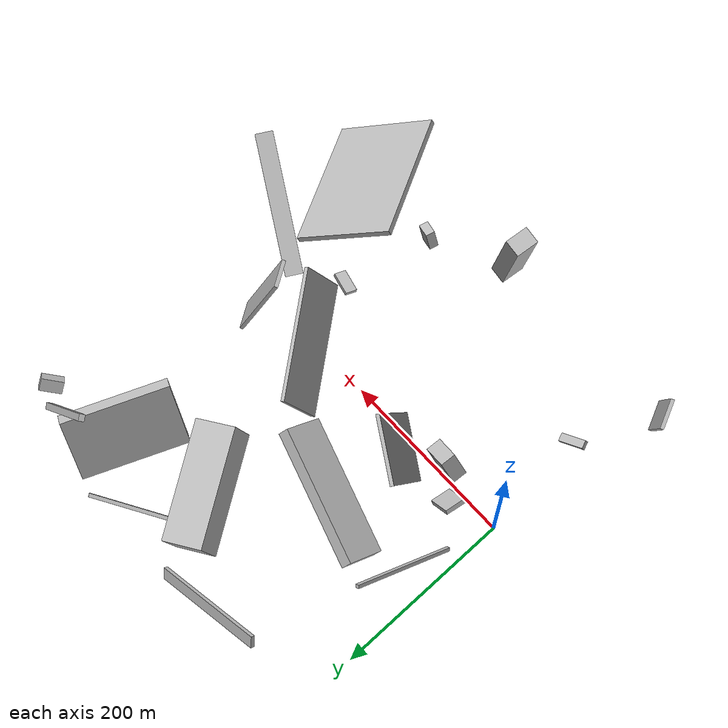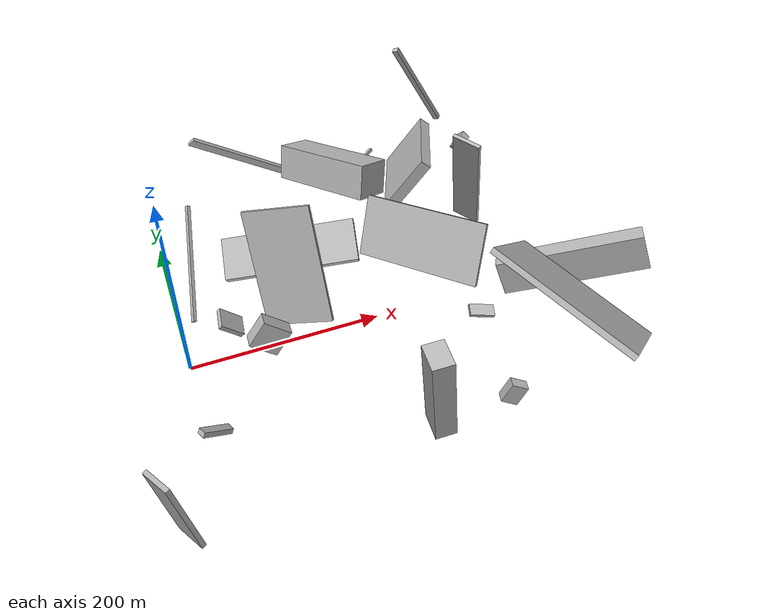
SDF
<sdf version="1.6">
 <world name="default">
  <scene>
   <sky><clouds><speed>12</speed></clouds></sky>
   <ambient>0.4 0.4 0.4 1</ambient>
   <background>0.7 0.7 0.7 1</background>
   <shadows>1</shadows>
  </scene>
  <gravity>0 0 -9.8066</gravity>
  <magnetic_field>6e-06 2.3e-05 -4.2e-05</magnetic_field>
  <physics default="0" name="default_physics" type="ode">
   <ode>
    <solver>
     <type>quick</type>
     <iters>10</iters>
     <sor>1.0</sor>
     <use_dynamic_moi_rescaling>0</use_dynamic_moi_rescaling>
    </solver>
    <constraints>
     <cfm>0</cfm>
     <erp>0.2</erp>
     <contact_max_correcting_vel>100</contact_max_correcting_vel>
     <contact_surface_layer>0.001</contact_surface_layer>
    </constraints>
   </ode>
   <max_step_size>0.004</max_step_size>
   <real_time_factor>1</real_time_factor>
   <real_time_update_rate>250</real_time_update_rate>
  </physics>
  <light name="sun" type="directional">
   <pose>0 0 10 0 0 0</pose>
   <diffuse>0.8 0.8 0.8 1</diffuse>
   <specular>0.2 0.2 0.2 1</specular>
   <attenuation>
    <range>1000</range>
    <constant>0.9</constant>
    <linear>0.01</linear>
    <quadratic>0.001</quadratic>
   </attenuation>
   <direction>-0.5 0.1 -0.9</direction>
  </light>
  <model name="building_1">
   <static>0</static>
   <pose>115.51957446293102 30.012629641058027 74.03645450761006 1.2761878235305428 -0.23148446944851434 -0.540725278665989</pose>
   <link name="link">
    <gravity>0</gravity>
    <pose>0 0 2.0 0 0 0</pose>
    <collision name="collision"><geometry><box><size>72 125 4</size></box></geometry></collision>
    <visual name="visual">
     <cast_shadows>0</cast_shadows>
     <geometry><box><size>72 125 4</size></box></geometry>
     <material>
      <script>
       <uri>model://HANNAS_wall/materials/scripts</uri>
       <uri>model://HANNAS_wall/materials/textures</uri>
       <name>vrc/HANNAS_wall</name>
      </script>
     </material>
    </visual>
   </link>
  </model>
  <model name="building_2">
   <static>0</static>
   <pose>387.1133379926369 256.8941587744013 70.54724467278805 -0.4402182527002584 0.30385240229504545 2.2242574939452053</pose>
   <link name="link">
    <gravity>0</gravity>
    <pose>0 0 63.5 0 0 0</pose>
    <collision name="collision"><geometry><box><size>7 6 127</size></box></geometry></collision>
    <visual name="visual">
     <cast_shadows>0</cast_shadows>
     <geometry><box><size>7 6 127</size></box></geometry>
     <material>
      <script>
       <uri>model://HANNAS_wall/materials/scripts</uri>
       <uri>model://HANNAS_wall/materials/textures</uri>
       <name>vrc/HANNAS_wall</name>
      </script>
     </material>
    </visual>
   </link>
  </model>
  <model name="building_3">
   <static>0</static>
   <pose>7.97189784267802 -118.61508589054509 38.027704734403855 1.8179590719950942 1.0104037315476861 -2.537257264718103</pose>
   <link name="link">
    <gravity>0</gravity>
    <pose>0 0 4.5 0 0 0</pose>
    <collision name="collision"><geometry><box><size>5 30 9</size></box></geometry></collision>
    <visual name="visual">
     <cast_shadows>0</cast_shadows>
     <geometry><box><size>5 30 9</size></box></geometry>
     <material>
      <script>
       <uri>model://HANNAS_wall/materials/scripts</uri>
       <uri>model://HANNAS_wall/materials/textures</uri>
       <name>vrc/HANNAS_wall</name>
      </script>
     </material>
    </visual>
   </link>
  </model>
  <model name="building_4">
   <static>0</static>
   <pose>267.36261876799415 -161.8885948501137 15.349895497531739 0.42323840495578896 0.03267897175602702 1.2963970974669163</pose>
   <link name="link">
    <gravity>0</gravity>
    <pose>0 0 11.0 0 0 0</pose>
    <collision name="collision"><geometry><box><size>10 17 22</size></box></geometry></collision>
    <visual name="visual">
     <cast_shadows>0</cast_shadows>
     <geometry><box><size>10 17 22</size></box></geometry>
     <material>
      <script>
       <uri>model://HANNAS_wall/materials/scripts</uri>
       <uri>model://HANNAS_wall/materials/textures</uri>
       <name>vrc/HANNAS_wall</name>
      </script>
     </material>
    </visual>
   </link>
  </model>
  <model name="building_5">
   <static>0</static>
   <pose>320.7974539367321 215.55659948649117 41.973523899523805 3.0539309524308496 -0.9636475291592219 -0.33959763902251516</pose>
   <link name="link">
    <gravity>0</gravity>
    <pose>0 0 7.0 0 0 0</pose>
    <collision name="collision"><geometry><box><size>78 117 14</size></box></geometry></collision>
    <visual name="visual">
     <cast_shadows>0</cast_shadows>
     <geometry><box><size>78 117 14</size></box></geometry>
     <material>
      <script>
       <uri>model://HANNAS_wall/materials/scripts</uri>
       <uri>model://HANNAS_wall/materials/textures</uri>
       <name>vrc/HANNAS_wall</name>
      </script>
     </material>
    </visual>
   </link>
  </model>
  <model name="building_6">
   <static>0</static>
   <pose>133.43179916695507 99.15676495498857 38.60626177656346 2.9647161248522873 -0.6748696581475191 1.3831967018278477</pose>
   <link name="link">
    <gravity>0</gravity>
    <pose>0 0 7.0 0 0 0</pose>
    <collision name="collision"><geometry><box><size>47 150 14</size></box></geometry></collision>
    <visual name="visual">
     <cast_shadows>0</cast_shadows>
     <geometry><box><size>47 150 14</size></box></geometry>
     <material>
      <script>
       <uri>model://HANNAS_wall/materials/scripts</uri>
       <uri>model://HANNAS_wall/materials/textures</uri>
       <name>vrc/HANNAS_wall</name>
      </script>
     </material>
    </visual>
   </link>
  </model>
  <model name="building_7">
   <static>0</static>
   <pose>258.74262911620576 19.909534169662365 74.21606483198269 1.1156829728362714 -0.09790075360918171 -0.9148234216251553</pose>
   <link name="link">
    <gravity>0</gravity>
    <pose>0 0 2.0 0 0 0</pose>
    <collision name="collision"><geometry><box><size>140 66 4</size></box></geometry></collision>
    <visual name="visual">
     <cast_shadows>0</cast_shadows>
     <geometry><box><size>140 66 4</size></box></geometry>
     <material>
      <script>
       <uri>model://HANNAS_wall/materials/scripts</uri>
       <uri>model://HANNAS_wall/materials/textures</uri>
       <name>vrc/HANNAS_wall</name>
      </script>
     </material>
    </visual>
   </link>
  </model>
  <model name="building_8">
   <static>0</static>
   <pose>81.44403660194112 0.31102568377460305 24.363558946305385 1.3852978594767997 -0.929839647574269 0.06048040096530649</pose>
   <link name="link">
    <gravity>0</gravity>
    <pose>0 0 8.5 0 0 0</pose>
    <collision name="collision"><geometry><box><size>30 32 17</size></box></geometry></collision>
    <visual name="visual">
     <cast_shadows>0</cast_shadows>
     <geometry><box><size>30 32 17</size></box></geometry>
     <material>
      <script>
       <uri>model://HANNAS_wall/materials/scripts</uri>
       <uri>model://HANNAS_wall/materials/textures</uri>
       <name>vrc/HANNAS_wall</name>
      </script>
     </material>
    </visual>
   </link>
  </model>
  <model name="building_9">
   <static>0</static>
   <pose>25.226934809508197 104.56485890450834 47.54090007706382 0.7309819269049206 -0.5959494464104163 1.3493401675680263</pose>
   <link name="link">
    <gravity>0</gravity>
    <pose>0 0 2.0 0 0 0</pose>
    <collision name="collision"><geometry><box><size>129 4 4</size></box></geometry></collision>
    <visual name="visual">
     <cast_shadows>0</cast_shadows>
     <geometry><box><size>129 4 4</size></box></geometry>
     <material>
      <script>
       <uri>model://HANNAS_wall/materials/scripts</uri>
       <uri>model://HANNAS_wall/materials/textures</uri>
       <name>vrc/HANNAS_wall</name>
      </script>
     </material>
    </visual>
   </link>
  </model>
  <model name="building_10">
   <static>0</static>
   <pose>324.55067096086225 46.7938423828568 69.03117717762628 -0.11810309749628616 0.2990807719115017 -2.6021578947201367</pose>
   <link name="link">
    <gravity>0</gravity>
    <pose>0 0 62.5 0 0 0</pose>
    <collision name="collision"><geometry><box><size>4 30 125</size></box></geometry></collision>
    <visual name="visual">
     <cast_shadows>0</cast_shadows>
     <geometry><box><size>4 30 125</size></box></geometry>
     <material>
      <script>
       <uri>model://HANNAS_wall/materials/scripts</uri>
       <uri>model://HANNAS_wall/materials/textures</uri>
       <name>vrc/HANNAS_wall</name>
      </script>
     </material>
    </visual>
   </link>
  </model>
  <model name="building_11">
   <static>0</static>
   <pose>375.6629728383953 -199.19862590786045 80.24010766186963 1.09961363889353 0.944648015756163 -3.0285141307707595</pose>
   <link name="link">
    <gravity>0</gravity>
    <pose>0 0 75.0 0 0 0</pose>
    <collision name="collision"><geometry><box><size>6 110 150</size></box></geometry></collision>
    <visual name="visual">
     <cast_shadows>0</cast_shadows>
     <geometry><box><size>6 110 150</size></box></geometry>
     <material>
      <script>
       <uri>model://HANNAS_wall/materials/scripts</uri>
       <uri>model://HANNAS_wall/materials/textures</uri>
       <name>vrc/HANNAS_wall</name>
      </script>
     </material>
    </visual>
   </link>
  </model>
  <model name="building_12">
   <static>0</static>
   <pose>58.48713099461814 20.27697907227497 18.076116640335453 -0.19225702769113573 0.8172435904016002 2.869195452817485</pose>
   <link name="link">
    <gravity>0</gravity>
    <pose>0 0 14.0 0 0 0</pose>
    <collision name="collision"><geometry><box><size>5 23 28</size></box></geometry></collision>
    <visual name="visual">
     <cast_shadows>0</cast_shadows>
     <geometry><box><size>5 23 28</size></box></geometry>
     <material>
      <script>
       <uri>model://HANNAS_wall/materials/scripts</uri>
       <uri>model://HANNAS_wall/materials/textures</uri>
       <name>vrc/HANNAS_wall</name>
      </script>
     </material>
    </visual>
   </link>
  </model>
  <model name="building_13">
   <static>0</static>
   <pose>-44.647450788794636 -179.25367894212422 57.617115712818865 1.349823540190127 -0.12284881890500682 0.48223438623768006</pose>
   <link name="link">
    <gravity>0</gravity>
    <pose>0 0 16.0 0 0 0</pose>
    <collision name="collision"><geometry><box><size>4 70 32</size></box></geometry></collision>
    <visual name="visual">
     <cast_shadows>0</cast_shadows>
     <geometry><box><size>4 70 32</size></box></geometry>
     <material>
      <script>
       <uri>model://HANNAS_wall/materials/scripts</uri>
       <uri>model://HANNAS_wall/materials/textures</uri>
       <name>vrc/HANNAS_wall</name>
      </script>
     </material>
    </visual>
   </link>
  </model>
  <model name="building_14">
   <static>0</static>
   <pose>422.05227171888646 244.09274452794637 41.64703382817886 1.943792606778513 -0.7469528997159388 -1.0995506602030976</pose>
   <link name="link">
    <gravity>0</gravity>
    <pose>0 0 12.0 0 0 0</pose>
    <collision name="collision"><geometry><box><size>14 12 24</size></box></geometry></collision>
    <visual name="visual">
     <cast_shadows>0</cast_shadows>
     <geometry><box><size>14 12 24</size></box></geometry>
     <material>
      <script>
       <uri>model://HANNAS_wall/materials/scripts</uri>
       <uri>model://HANNAS_wall/materials/textures</uri>
       <name>vrc/HANNAS_wall</name>
      </script>
     </material>
    </visual>
   </link>
  </model>
  <model name="building_15">
   <static>0</static>
   <pose>126.96576999382339 272.1100739875777 56.246498322804754 0.9753829461129081 -0.5750250248849824 -3.0588907629614237</pose>
   <link name="link">
    <gravity>0</gravity>
    <pose>0 0 2.0 0 0 0</pose>
    <collision name="collision"><geometry><box><size>150 13 4</size></box></geometry></collision>
    <visual name="visual">
     <cast_shadows>0</cast_shadows>
     <geometry><box><size>150 13 4</size></box></geometry>
     <material>
      <script>
       <uri>model://HANNAS_wall/materials/scripts</uri>
       <uri>model://HANNAS_wall/materials/textures</uri>
       <name>vrc/HANNAS_wall</name>
      </script>
     </material>
    </visual>
   </link>
  </model>
  <model name="building_16">
   <static>0</static>
   <pose>183.51183902769344 -189.80444160539525 52.96886568303835 0.09717964379003682 0.051806832193679424 -1.6655870922619194</pose>
   <link name="link">
    <gravity>0</gravity>
    <pose>0 0 46.0 0 0 0</pose>
    <collision name="collision"><geometry><box><size>26 19 92</size></box></geometry></collision>
    <visual name="visual">
     <cast_shadows>0</cast_shadows>
     <geometry><box><size>26 19 92</size></box></geometry>
     <material>
      <script>
       <uri>model://HANNAS_wall/materials/scripts</uri>
       <uri>model://HANNAS_wall/materials/textures</uri>
       <name>vrc/HANNAS_wall</name>
      </script>
     </material>
    </visual>
   </link>
  </model>
  <model name="building_17">
   <static>0</static>
   <pose>398.21647565876594 -65.52765424956505 47.29425304990819 -0.04961652624474608 -0.3613726401222641 -0.5213396765600911</pose>
   <link name="link">
    <gravity>0</gravity>
    <pose>0 0 19.5 0 0 0</pose>
    <collision name="collision"><geometry><box><size>150 19 39</size></box></geometry></collision>
    <visual name="visual">
     <cast_shadows>0</cast_shadows>
     <geometry><box><size>150 19 39</size></box></geometry>
     <material>
      <script>
       <uri>model://HANNAS_wall/materials/scripts</uri>
       <uri>model://HANNAS_wall/materials/textures</uri>
       <name>vrc/HANNAS_wall</name>
      </script>
     </material>
    </visual>
   </link>
  </model>
  <model name="building_18">
   <static>0</static>
   <pose>199.15242401730717 185.5834659477927 72.24214703069761 2.674736199051546 -1.2635180216982853 1.0094490887404912</pose>
   <link name="link">
    <gravity>0</gravity>
    <pose>0 0 22.0 0 0 0</pose>
    <collision name="collision"><geometry><box><size>41 127 44</size></box></geometry></collision>
    <visual name="visual">
     <cast_shadows>0</cast_shadows>
     <geometry><box><size>41 127 44</size></box></geometry>
     <material>
      <script>
       <uri>model://HANNAS_wall/materials/scripts</uri>
       <uri>model://HANNAS_wall/materials/textures</uri>
       <name>vrc/HANNAS_wall</name>
      </script>
     </material>
    </visual>
   </link>
  </model>
  <model name="building_19">
   <static>0</static>
   <pose>289.32107880892966 -67.1340058102382 28.967943302662597 0.49178064435341584 1.2396003923991126 1.780586789200682</pose>
   <link name="link">
    <gravity>0</gravity>
    <pose>0 0 6.5 0 0 0</pose>
    <collision name="collision"><geometry><box><size>4 26 13</size></box></geometry></collision>
    <visual name="visual">
     <cast_shadows>0</cast_shadows>
     <geometry><box><size>4 26 13</size></box></geometry>
     <material>
      <script>
       <uri>model://HANNAS_wall/materials/scripts</uri>
       <uri>model://HANNAS_wall/materials/textures</uri>
       <name>vrc/HANNAS_wall</name>
      </script>
     </material>
    </visual>
   </link>
  </model>
  <model name="building_20">
   <static>0</static>
   <pose>265.33244077826754 262.1607087794485 13.594945589339403 -0.650120171132615 -1.1918633760805446 2.764186819916506</pose>
   <link name="link">
    <gravity>0</gravity>
    <pose>0 0 2.0 0 0 0</pose>
    <collision name="collision"><geometry><box><size>4 88 4</size></box></geometry></collision>
    <visual name="visual">
     <cast_shadows>0</cast_shadows>
     <geometry><box><size>4 88 4</size></box></geometry>
     <material>
      <script>
       <uri>model://HANNAS_wall/materials/scripts</uri>
       <uri>model://HANNAS_wall/materials/textures</uri>
       <name>vrc/HANNAS_wall</name>
      </script>
     </material>
    </visual>
   </link>
  </model>
 </world>
</sdf>
